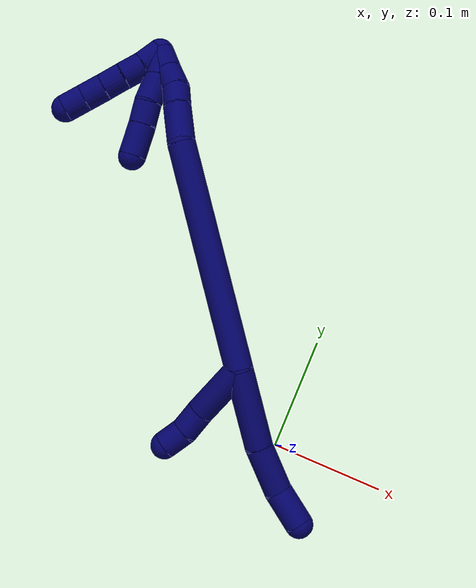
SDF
<sdf version="1.7">
 <world name="default">
  <model name="7">
   <static>0</static>
   <link name="7">
    <collision name="collision-cylinder-e_1_2_8">
     <pose>0.033033 -0.010038 -0.008915 2.29699 1.18476 1.96422</pose>
     <geometry><cylinder><radius>0.0125</radius><length>0.071314</length></cylinder></geometry>
     <surface>
      <friction><ode><mu>1.16</mu><mu2>1.16</mu2><slip1>0</slip1><slip2>0</slip2></ode></friction>
      <contact><ode><kp>1e+06</kp><kd>1</kd><max_vel>0</max_vel><min_depth>0.001</min_depth></ode></contact>
     </surface>
    </collision>
    <visual name="visual-cylinder-e_1_2_8">
     <pose>0.033033 -0.010038 -0.008915 2.29699 1.18476 1.96422</pose>
     <geometry><cylinder><radius>0.0125</radius><length>0.071314</length></cylinder></geometry>
     <material><ambient>0.003922 0 0.403922 1</ambient></material>
    </visual>
    <collision name="collision-cylinder-e_2_8_9">
     <pose>0.086578 -0.028043 -0.020468 1.89062 1.18248 1.49782</pose>
     <geometry><cylinder><radius>0.0125</radius><length>0.044325</length></cylinder></geometry>
     <surface>
      <friction><ode><mu>1.16</mu><mu2>1.16</mu2><slip1>0</slip1><slip2>0</slip2></ode></friction>
      <contact><ode><kp>1e+06</kp><kd>1</kd><max_vel>0</max_vel><min_depth>0.001</min_depth></ode></contact>
     </surface>
    </collision>
    <visual name="visual-cylinder-e_2_8_9">
     <pose>0.086578 -0.028043 -0.020468 1.89062 1.18248 1.49782</pose>
     <geometry><cylinder><radius>0.0125</radius><length>0.044325</length></cylinder></geometry>
     <material><ambient>0.003922 0 0.403922 1</ambient></material>
    </visual>
    <collision name="collision-cylinder-e_3_9_6">
     <pose>0.120638 -0.046568 -0.023469 1.60515 0.908435 0.935818</pose>
     <geometry><cylinder><radius>0.0125</radius><length>0.034361</length></cylinder></geometry>
     <surface>
      <friction><ode><mu>1.16</mu><mu2>1.16</mu2><slip1>0</slip1><slip2>0</slip2></ode></friction>
      <contact><ode><kp>1e+06</kp><kd>1</kd><max_vel>0</max_vel><min_depth>0.001</min_depth></ode></contact>
     </surface>
    </collision>
    <visual name="visual-cylinder-e_3_9_6">
     <pose>0.120638 -0.046568 -0.023469 1.60515 0.908435 0.935818</pose>
     <geometry><cylinder><radius>0.0125</radius><length>0.034361</length></cylinder></geometry>
     <material><ambient>0.003922 0 0.403922 1</ambient></material>
    </visual>
    <collision name="collision-cylinder-e_1_2_10">
     <pose>0.014129 0.009447 -0.02131 -2.72431 0.544906 -1.84468</pose>
     <geometry><cylinder><radius>0.0125</radius><length>0.054515</length></cylinder></geometry>
     <surface>
      <friction><ode><mu>1.16</mu><mu2>1.16</mu2><slip1>0</slip1><slip2>0</slip2></ode></friction>
      <contact><ode><kp>1e+06</kp><kd>1</kd><max_vel>0</max_vel><min_depth>0.001</min_depth></ode></contact>
     </surface>
    </collision>
    <visual name="visual-cylinder-e_1_2_10">
     <pose>0.014129 0.009447 -0.02131 -2.72431 0.544906 -1.84468</pose>
     <geometry><cylinder><radius>0.0125</radius><length>0.054515</length></cylinder></geometry>
     <material><ambient>0.003922 0 0.403922 1</ambient></material>
    </visual>
    <collision name="collision-cylinder-e_2_10_11">
     <pose>0.033701 0.020533 -0.053007 -2.98514 0.477694 -2.5187</pose>
     <geometry><cylinder><radius>0.0125</radius><length>0.023681</length></cylinder></geometry>
     <surface>
      <friction><ode><mu>1.16</mu><mu2>1.16</mu2><slip1>0</slip1><slip2>0</slip2></ode></friction>
      <contact><ode><kp>1e+06</kp><kd>1</kd><max_vel>0</max_vel><min_depth>0.001</min_depth></ode></contact>
     </surface>
    </collision>
    <visual name="visual-cylinder-e_2_10_11">
     <pose>0.033701 0.020533 -0.053007 -2.98514 0.477694 -2.5187</pose>
     <geometry><cylinder><radius>0.0125</radius><length>0.023681</length></cylinder></geometry>
     <material><ambient>0.003922 0 0.403922 1</ambient></material>
    </visual>
    <collision name="collision-cylinder-e_3_11_5">
     <pose>0.041462 0.024517 -0.073784 -2.91958 0.214202 -1.53472</pose>
     <geometry><cylinder><radius>0.0125</radius><length>0.021803</length></cylinder></geometry>
     <surface>
      <friction><ode><mu>1.16</mu><mu2>1.16</mu2><slip1>0</slip1><slip2>0</slip2></ode></friction>
      <contact><ode><kp>1e+06</kp><kd>1</kd><max_vel>0</max_vel><min_depth>0.001</min_depth></ode></contact>
     </surface>
    </collision>
    <visual name="visual-cylinder-e_3_11_5">
     <pose>0.041462 0.024517 -0.073784 -2.91958 0.214202 -1.53472</pose>
     <geometry><cylinder><radius>0.0125</radius><length>0.021803</length></cylinder></geometry>
     <material><ambient>0.003922 0 0.403922 1</ambient></material>
    </visual>
    <collision name="collision-cylinder-e_1_2_12">
     <pose>-0.084453 0.047552 0.031215 -0.989914 -0.978052 0.559407</pose>
     <geometry><cylinder><radius>0.0125</radius><length>0.203646</length></cylinder></geometry>
     <surface>
      <friction><ode><mu>1.16</mu><mu2>1.16</mu2><slip1>0</slip1><slip2>0</slip2></ode></friction>
      <contact><ode><kp>1e+06</kp><kd>1</kd><max_vel>0</max_vel><min_depth>0.001</min_depth></ode></contact>
     </surface>
    </collision>
    <visual name="visual-cylinder-e_1_2_12">
     <pose>-0.084453 0.047552 0.031215 -0.989914 -0.978052 0.559407</pose>
     <geometry><cylinder><radius>0.0125</radius><length>0.203646</length></cylinder></geometry>
     <material><ambient>0.003922 0 0.403922 1</ambient></material>
    </visual>
    <collision name="collision-cylinder-e_2_12_13">
     <pose>-0.179461 0.106625 0.070678 -0.949453 -0.640264 0.337529</pose>
     <geometry><cylinder><radius>0.0125</radius><length>0.035337</length></cylinder></geometry>
     <surface>
      <friction><ode><mu>1.16</mu><mu2>1.16</mu2><slip1>0</slip1><slip2>0</slip2></ode></friction>
      <contact><ode><kp>1e+06</kp><kd>1</kd><max_vel>0</max_vel><min_depth>0.001</min_depth></ode></contact>
     </surface>
    </collision>
    <visual name="visual-cylinder-e_2_12_13">
     <pose>-0.179461 0.106625 0.070678 -0.949453 -0.640264 0.337529</pose>
     <geometry><cylinder><radius>0.0125</radius><length>0.035337</length></cylinder></geometry>
     <material><ambient>0.003922 0 0.403922 1</ambient></material>
    </visual>
    <collision name="collision-cylinder-e_3_13_14">
     <pose>-0.195112 0.125161 0.083944 -0.949807 -0.533588 0.279216</pose>
     <geometry><cylinder><radius>0.0125</radius><length>0.020036</length></cylinder></geometry>
     <surface>
      <friction><ode><mu>1.16</mu><mu2>1.16</mu2><slip1>0</slip1><slip2>0</slip2></ode></friction>
      <contact><ode><kp>1e+06</kp><kd>1</kd><max_vel>0</max_vel><min_depth>0.001</min_depth></ode></contact>
     </surface>
    </collision>
    <visual name="visual-cylinder-e_3_13_14">
     <pose>-0.195112 0.125161 0.083944 -0.949807 -0.533588 0.279216</pose>
     <geometry><cylinder><radius>0.0125</radius><length>0.020036</length></cylinder></geometry>
     <material><ambient>0.003922 0 0.403922 1</ambient></material>
    </visual>
    <collision name="collision-cylinder-e_4_14_15">
     <pose>-0.206351 0.140277 0.091256 -1.29489 -0.630388 0.483483</pose>
     <geometry><cylinder><radius>0.0125</radius><length>0.020845</length></cylinder></geometry>
     <surface>
      <friction><ode><mu>1.16</mu><mu2>1.16</mu2><slip1>0</slip1><slip2>0</slip2></ode></friction>
      <contact><ode><kp>1e+06</kp><kd>1</kd><max_vel>0</max_vel><min_depth>0.001</min_depth></ode></contact>
     </surface>
    </collision>
    <visual name="visual-cylinder-e_4_14_15">
     <pose>-0.206351 0.140277 0.091256 -1.29489 -0.630388 0.483483</pose>
     <geometry><cylinder><radius>0.0125</radius><length>0.020845</length></cylinder></geometry>
     <material><ambient>0.003922 0 0.403922 1</ambient></material>
    </visual>
    <collision name="collision-cylinder-e_5_15_1">
     <pose>-0.219268 0.155428 0.095956 -1.24197 -0.737951 0.539767</pose>
     <geometry><cylinder><radius>0.0125</radius><length>0.020137</length></cylinder></geometry>
     <surface>
      <friction><ode><mu>1.16</mu><mu2>1.16</mu2><slip1>0</slip1><slip2>0</slip2></ode></friction>
      <contact><ode><kp>1e+06</kp><kd>1</kd><max_vel>0</max_vel><min_depth>0.001</min_depth></ode></contact>
     </surface>
    </collision>
    <visual name="visual-cylinder-e_5_15_1">
     <pose>-0.219268 0.155428 0.095956 -1.24197 -0.737951 0.539767</pose>
     <geometry><cylinder><radius>0.0125</radius><length>0.020137</length></cylinder></geometry>
     <material><ambient>0.003922 0 0.403922 1</ambient></material>
    </visual>
    <collision name="collision-cylinder-e_1_1_16">
     <pose>-0.224568 0.163172 0.088495 -3.07132 0.147958 -2.25592</pose>
     <geometry><cylinder><radius>0.0125</radius><length>0.02</length></cylinder></geometry>
     <surface>
      <friction><ode><mu>1.16</mu><mu2>1.16</mu2><slip1>0</slip1><slip2>0</slip2></ode></friction>
      <contact><ode><kp>1e+06</kp><kd>1</kd><max_vel>0</max_vel><min_depth>0.001</min_depth></ode></contact>
     </surface>
    </collision>
    <visual name="visual-cylinder-e_1_1_16">
     <pose>-0.224568 0.163172 0.088495 -3.07132 0.147958 -2.25592</pose>
     <geometry><cylinder><radius>0.0125</radius><length>0.02</length></cylinder></geometry>
     <material><ambient>0.003922 0 0.403922 1</ambient></material>
    </visual>
    <collision name="collision-cylinder-e_2_16_17">
     <pose>-0.222515 0.165797 0.068834 -2.94698 0.057891 -0.576682</pose>
     <geometry><cylinder><radius>0.0125</radius><length>0.02</length></cylinder></geometry>
     <surface>
      <friction><ode><mu>1.16</mu><mu2>1.16</mu2><slip1>0</slip1><slip2>0</slip2></ode></friction>
      <contact><ode><kp>1e+06</kp><kd>1</kd><max_vel>0</max_vel><min_depth>0.001</min_depth></ode></contact>
     </surface>
    </collision>
    <visual name="visual-cylinder-e_2_16_17">
     <pose>-0.222515 0.165797 0.068834 -2.94698 0.057891 -0.576682</pose>
     <geometry><cylinder><radius>0.0125</radius><length>0.02</length></cylinder></geometry>
     <material><ambient>0.003922 0 0.403922 1</ambient></material>
    </visual>
    <collision name="collision-cylinder-e_3_17_18">
     <pose>-0.221045 0.170031 0.049349 -2.90827 0.08928 -0.72832</pose>
     <geometry><cylinder><radius>0.0125</radius><length>0.02</length></cylinder></geometry>
     <surface>
      <friction><ode><mu>1.16</mu><mu2>1.16</mu2><slip1>0</slip1><slip2>0</slip2></ode></friction>
      <contact><ode><kp>1e+06</kp><kd>1</kd><max_vel>0</max_vel><min_depth>0.001</min_depth></ode></contact>
     </surface>
    </collision>
    <visual name="visual-cylinder-e_3_17_18">
     <pose>-0.221045 0.170031 0.049349 -2.90827 0.08928 -0.72832</pose>
     <geometry><cylinder><radius>0.0125</radius><length>0.02</length></cylinder></geometry>
     <material><ambient>0.003922 0 0.403922 1</ambient></material>
    </visual>
    <collision name="collision-cylinder-e_4_18_19">
     <pose>-0.219377 0.174833 0.030007 -2.8882 0.077669 -0.592131</pose>
     <geometry><cylinder><radius>0.0125</radius><length>0.02</length></cylinder></geometry>
     <surface>
      <friction><ode><mu>1.16</mu><mu2>1.16</mu2><slip1>0</slip1><slip2>0</slip2></ode></friction>
      <contact><ode><kp>1e+06</kp><kd>1</kd><max_vel>0</max_vel><min_depth>0.001</min_depth></ode></contact>
     </surface>
    </collision>
    <visual name="visual-cylinder-e_4_18_19">
     <pose>-0.219377 0.174833 0.030007 -2.8882 0.077669 -0.592131</pose>
     <geometry><cylinder><radius>0.0125</radius><length>0.02</length></cylinder></geometry>
     <material><ambient>0.003922 0 0.403922 1</ambient></material>
    </visual>
    <collision name="collision-cylinder-e_5_19_4">
     <pose>-0.217816 0.179851 0.01071 -2.88614 0.07857 -0.594011</pose>
     <geometry><cylinder><radius>0.0125</radius><length>0.02</length></cylinder></geometry>
     <surface>
      <friction><ode><mu>1.16</mu><mu2>1.16</mu2><slip1>0</slip1><slip2>0</slip2></ode></friction>
      <contact><ode><kp>1e+06</kp><kd>1</kd><max_vel>0</max_vel><min_depth>0.001</min_depth></ode></contact>
     </surface>
    </collision>
    <visual name="visual-cylinder-e_5_19_4">
     <pose>-0.217816 0.179851 0.01071 -2.88614 0.07857 -0.594011</pose>
     <geometry><cylinder><radius>0.0125</radius><length>0.02</length></cylinder></geometry>
     <material><ambient>0.003922 0 0.403922 1</ambient></material>
    </visual>
    <collision name="collision-cylinder-e_1_1_20">
     <pose>-0.218303 0.156702 0.091056 2.47261 0.693376 1.60953</pose>
     <geometry><cylinder><radius>0.0125</radius><length>0.024216</length></cylinder></geometry>
     <surface>
      <friction><ode><mu>1.16</mu><mu2>1.16</mu2><slip1>0</slip1><slip2>0</slip2></ode></friction>
      <contact><ode><kp>1e+06</kp><kd>1</kd><max_vel>0</max_vel><min_depth>0.001</min_depth></ode></contact>
     </surface>
    </collision>
    <visual name="visual-cylinder-e_1_1_20">
     <pose>-0.218303 0.156702 0.091056 2.47261 0.693376 1.60953</pose>
     <geometry><cylinder><radius>0.0125</radius><length>0.024216</length></cylinder></geometry>
     <material><ambient>0.003922 0 0.403922 1</ambient></material>
    </visual>
    <collision name="collision-cylinder-e_2_20_21">
     <pose>-0.204184 0.14706 0.073392 2.7843 0.523352 1.95513</pose>
     <geometry><cylinder><radius>0.0125</radius><length>0.025531</length></cylinder></geometry>
     <surface>
      <friction><ode><mu>1.16</mu><mu2>1.16</mu2><slip1>0</slip1><slip2>0</slip2></ode></friction>
      <contact><ode><kp>1e+06</kp><kd>1</kd><max_vel>0</max_vel><min_depth>0.001</min_depth></ode></contact>
     </surface>
    </collision>
    <visual name="visual-cylinder-e_2_20_21">
     <pose>-0.204184 0.14706 0.073392 2.7843 0.523352 1.95513</pose>
     <geometry><cylinder><radius>0.0125</radius><length>0.025531</length></cylinder></geometry>
     <material><ambient>0.003922 0 0.403922 1</ambient></material>
    </visual>
    <collision name="collision-cylinder-e_3_21_22">
     <pose>-0.19088 0.140703 0.055655 2.81611 0.726768 2.32639</pose>
     <geometry><cylinder><radius>0.0125</radius><length>0.020842</length></cylinder></geometry>
     <surface>
      <friction><ode><mu>1.16</mu><mu2>1.16</mu2><slip1>0</slip1><slip2>0</slip2></ode></friction>
      <contact><ode><kp>1e+06</kp><kd>1</kd><max_vel>0</max_vel><min_depth>0.001</min_depth></ode></contact>
     </surface>
    </collision>
    <visual name="visual-cylinder-e_3_21_22">
     <pose>-0.19088 0.140703 0.055655 2.81611 0.726768 2.32639</pose>
     <geometry><cylinder><radius>0.0125</radius><length>0.020842</length></cylinder></geometry>
     <material><ambient>0.003922 0 0.403922 1</ambient></material>
    </visual>
    <collision name="collision-cylinder-e_4_22_3">
     <pose>-0.174899 0.13483 0.037194 2.84538 0.663436 2.32407</pose>
     <geometry><cylinder><radius>0.0125</radius><length>0.02941</length></cylinder></geometry>
     <surface>
      <friction><ode><mu>1.16</mu><mu2>1.16</mu2><slip1>0</slip1><slip2>0</slip2></ode></friction>
      <contact><ode><kp>1e+06</kp><kd>1</kd><max_vel>0</max_vel><min_depth>0.001</min_depth></ode></contact>
     </surface>
    </collision>
    <visual name="visual-cylinder-e_4_22_3">
     <pose>-0.174899 0.13483 0.037194 2.84538 0.663436 2.32407</pose>
     <geometry><cylinder><radius>0.0125</radius><length>0.02941</length></cylinder></geometry>
     <material><ambient>0.003922 0 0.403922 1</ambient></material>
    </visual>
    <collision name="collision-sphere-3">
     <pose>-0.165844 0.131448 0.026113 0 -0 0</pose>
     <geometry><sphere><radius>0.0125</radius></sphere></geometry>
     <surface>
      <friction><ode><mu>1.16</mu><mu2>1.16</mu2><slip1>0</slip1><slip2>0</slip2></ode></friction>
      <contact><ode><kp>1e+06</kp><kd>1</kd><max_vel>0</max_vel><min_depth>0.001</min_depth></ode></contact>
     </surface>
    </collision>
    <visual name="visual-sphere-3">
     <pose>-0.165844 0.131448 0.026113 0 -0 0</pose>
     <geometry><sphere><radius>0.0125</radius></sphere></geometry>
     <material><ambient>0.003922 0 0.403922 1</ambient></material>
    </visual>
    <collision name="collision-sphere-22">
     <pose>-0.183955 0.138212 0.048276 0 -0 0</pose>
     <geometry><sphere><radius>0.0125</radius></sphere></geometry>
     <surface>
      <friction><ode><mu>1.16</mu><mu2>1.16</mu2><slip1>0</slip1><slip2>0</slip2></ode></friction>
      <contact><ode><kp>1e+06</kp><kd>1</kd><max_vel>0</max_vel><min_depth>0.001</min_depth></ode></contact>
     </surface>
    </collision>
    <visual name="visual-sphere-22">
     <pose>-0.183955 0.138212 0.048276 0 -0 0</pose>
     <geometry><sphere><radius>0.0125</radius></sphere></geometry>
     <material><ambient>0.003922 0 0.403922 1</ambient></material>
    </visual>
    <collision name="collision-sphere-21">
     <pose>-0.197804 0.143193 0.063034 0 -0 0</pose>
     <geometry><sphere><radius>0.0125</radius></sphere></geometry>
     <surface>
      <friction><ode><mu>1.16</mu><mu2>1.16</mu2><slip1>0</slip1><slip2>0</slip2></ode></friction>
      <contact><ode><kp>1e+06</kp><kd>1</kd><max_vel>0</max_vel><min_depth>0.001</min_depth></ode></contact>
     </surface>
    </collision>
    <visual name="visual-sphere-21">
     <pose>-0.197804 0.143193 0.063034 0 -0 0</pose>
     <geometry><sphere><radius>0.0125</radius></sphere></geometry>
     <material><ambient>0.003922 0 0.403922 1</ambient></material>
    </visual>
    <collision name="collision-sphere-20">
     <pose>-0.210564 0.150927 0.083751 0 -0 0</pose>
     <geometry><sphere><radius>0.0125</radius></sphere></geometry>
     <surface>
      <friction><ode><mu>1.16</mu><mu2>1.16</mu2><slip1>0</slip1><slip2>0</slip2></ode></friction>
      <contact><ode><kp>1e+06</kp><kd>1</kd><max_vel>0</max_vel><min_depth>0.001</min_depth></ode></contact>
     </surface>
    </collision>
    <visual name="visual-sphere-20">
     <pose>-0.210564 0.150927 0.083751 0 -0 0</pose>
     <geometry><sphere><radius>0.0125</radius></sphere></geometry>
     <material><ambient>0.003922 0 0.403922 1</ambient></material>
    </visual>
    <collision name="collision-sphere-4">
     <pose>-0.217031 0.18237 0.001064 0 -0 0</pose>
     <geometry><sphere><radius>0.0125</radius></sphere></geometry>
     <surface>
      <friction><ode><mu>1.16</mu><mu2>1.16</mu2><slip1>0</slip1><slip2>0</slip2></ode></friction>
      <contact><ode><kp>1e+06</kp><kd>1</kd><max_vel>0</max_vel><min_depth>0.001</min_depth></ode></contact>
     </surface>
    </collision>
    <visual name="visual-sphere-4">
     <pose>-0.217031 0.18237 0.001064 0 -0 0</pose>
     <geometry><sphere><radius>0.0125</radius></sphere></geometry>
     <material><ambient>0.003922 0 0.403922 1</ambient></material>
    </visual>
    <collision name="collision-sphere-11">
     <pose>0.039144 0.022171 -0.063393 0 -0 0</pose>
     <geometry><sphere><radius>0.0125</radius></sphere></geometry>
     <surface>
      <friction><ode><mu>1.16</mu><mu2>1.16</mu2><slip1>0</slip1><slip2>0</slip2></ode></friction>
      <contact><ode><kp>1e+06</kp><kd>1</kd><max_vel>0</max_vel><min_depth>0.001</min_depth></ode></contact>
     </surface>
    </collision>
    <visual name="visual-sphere-11">
     <pose>0.039144 0.022171 -0.063393 0 -0 0</pose>
     <geometry><sphere><radius>0.0125</radius></sphere></geometry>
     <material><ambient>0.003922 0 0.403922 1</ambient></material>
    </visual>
    <collision name="collision-sphere-10">
     <pose>0.028257 0.018894 -0.04262 0 -0 0</pose>
     <geometry><sphere><radius>0.0125</radius></sphere></geometry>
     <surface>
      <friction><ode><mu>1.16</mu><mu2>1.16</mu2><slip1>0</slip1><slip2>0</slip2></ode></friction>
      <contact><ode><kp>1e+06</kp><kd>1</kd><max_vel>0</max_vel><min_depth>0.001</min_depth></ode></contact>
     </surface>
    </collision>
    <visual name="visual-sphere-10">
     <pose>0.028257 0.018894 -0.04262 0 -0 0</pose>
     <geometry><sphere><radius>0.0125</radius></sphere></geometry>
     <material><ambient>0.003922 0 0.403922 1</ambient></material>
    </visual>
    <collision name="collision-sphere-6">
     <pose>0.134186 -0.057128 -0.023832 0 -0 0</pose>
     <geometry><sphere><radius>0.0125</radius></sphere></geometry>
     <surface>
      <friction><ode><mu>1.16</mu><mu2>1.16</mu2><slip1>0</slip1><slip2>0</slip2></ode></friction>
      <contact><ode><kp>1e+06</kp><kd>1</kd><max_vel>0</max_vel><min_depth>0.001</min_depth></ode></contact>
     </surface>
    </collision>
    <visual name="visual-sphere-6">
     <pose>0.134186 -0.057128 -0.023832 0 -0 0</pose>
     <geometry><sphere><radius>0.0125</radius></sphere></geometry>
     <material><ambient>0.003922 0 0.403922 1</ambient></material>
    </visual>
    <collision name="collision-sphere-9">
     <pose>0.107091 -0.036009 -0.023106 0 -0 0</pose>
     <geometry><sphere><radius>0.0125</radius></sphere></geometry>
     <surface>
      <friction><ode><mu>1.16</mu><mu2>1.16</mu2><slip1>0</slip1><slip2>0</slip2></ode></friction>
      <contact><ode><kp>1e+06</kp><kd>1</kd><max_vel>0</max_vel><min_depth>0.001</min_depth></ode></contact>
     </surface>
    </collision>
    <visual name="visual-sphere-9">
     <pose>0.107091 -0.036009 -0.023106 0 -0 0</pose>
     <geometry><sphere><radius>0.0125</radius></sphere></geometry>
     <material><ambient>0.003922 0 0.403922 1</ambient></material>
    </visual>
    <collision name="collision-sphere-2">
     <geometry><sphere><radius>0.0125</radius></sphere></geometry>
     <surface>
      <friction><ode><mu>1.16</mu><mu2>1.16</mu2><slip1>0</slip1><slip2>0</slip2></ode></friction>
      <contact><ode><kp>1e+06</kp><kd>1</kd><max_vel>0</max_vel><min_depth>0.001</min_depth></ode></contact>
     </surface>
    </collision>
    <visual name="visual-sphere-2">
     <geometry><sphere><radius>0.0125</radius></sphere></geometry>
     <material><ambient>0.003922 0 0.403922 1</ambient></material>
    </visual>
    <collision name="collision-sphere-19">
     <pose>-0.218601 0.177332 0.020355 0 -0 0</pose>
     <geometry><sphere><radius>0.0125</radius></sphere></geometry>
     <surface>
      <friction><ode><mu>1.16</mu><mu2>1.16</mu2><slip1>0</slip1><slip2>0</slip2></ode></friction>
      <contact><ode><kp>1e+06</kp><kd>1</kd><max_vel>0</max_vel><min_depth>0.001</min_depth></ode></contact>
     </surface>
    </collision>
    <visual name="visual-sphere-19">
     <pose>-0.218601 0.177332 0.020355 0 -0 0</pose>
     <geometry><sphere><radius>0.0125</radius></sphere></geometry>
     <material><ambient>0.003922 0 0.403922 1</ambient></material>
    </visual>
    <collision name="collision-sphere-8">
     <pose>0.066065 -0.020077 -0.01783 0 -0 0</pose>
     <geometry><sphere><radius>0.0125</radius></sphere></geometry>
     <surface>
      <friction><ode><mu>1.16</mu><mu2>1.16</mu2><slip1>0</slip1><slip2>0</slip2></ode></friction>
      <contact><ode><kp>1e+06</kp><kd>1</kd><max_vel>0</max_vel><min_depth>0.001</min_depth></ode></contact>
     </surface>
    </collision>
    <visual name="visual-sphere-8">
     <pose>0.066065 -0.020077 -0.01783 0 -0 0</pose>
     <geometry><sphere><radius>0.0125</radius></sphere></geometry>
     <material><ambient>0.003922 0 0.403922 1</ambient></material>
    </visual>
    <collision name="collision-sphere-5">
     <pose>0.043779 0.026862 -0.084176 0 -0 0</pose>
     <geometry><sphere><radius>0.0125</radius></sphere></geometry>
     <surface>
      <friction><ode><mu>1.16</mu><mu2>1.16</mu2><slip1>0</slip1><slip2>0</slip2></ode></friction>
      <contact><ode><kp>1e+06</kp><kd>1</kd><max_vel>0</max_vel><min_depth>0.001</min_depth></ode></contact>
     </surface>
    </collision>
    <visual name="visual-sphere-5">
     <pose>0.043779 0.026862 -0.084176 0 -0 0</pose>
     <geometry><sphere><radius>0.0125</radius></sphere></geometry>
     <material><ambient>0.003922 0 0.403922 1</ambient></material>
    </visual>
    <collision name="collision-sphere-12">
     <pose>-0.168906 0.095105 0.06243 0 -0 0</pose>
     <geometry><sphere><radius>0.0125</radius></sphere></geometry>
     <surface>
      <friction><ode><mu>1.16</mu><mu2>1.16</mu2><slip1>0</slip1><slip2>0</slip2></ode></friction>
      <contact><ode><kp>1e+06</kp><kd>1</kd><max_vel>0</max_vel><min_depth>0.001</min_depth></ode></contact>
     </surface>
    </collision>
    <visual name="visual-sphere-12">
     <pose>-0.168906 0.095105 0.06243 0 -0 0</pose>
     <geometry><sphere><radius>0.0125</radius></sphere></geometry>
     <material><ambient>0.003922 0 0.403922 1</ambient></material>
    </visual>
    <collision name="collision-sphere-13">
     <pose>-0.190016 0.118146 0.078926 0 -0 0</pose>
     <geometry><sphere><radius>0.0125</radius></sphere></geometry>
     <surface>
      <friction><ode><mu>1.16</mu><mu2>1.16</mu2><slip1>0</slip1><slip2>0</slip2></ode></friction>
      <contact><ode><kp>1e+06</kp><kd>1</kd><max_vel>0</max_vel><min_depth>0.001</min_depth></ode></contact>
     </surface>
    </collision>
    <visual name="visual-sphere-13">
     <pose>-0.190016 0.118146 0.078926 0 -0 0</pose>
     <geometry><sphere><radius>0.0125</radius></sphere></geometry>
     <material><ambient>0.003922 0 0.403922 1</ambient></material>
    </visual>
    <collision name="collision-sphere-14">
     <pose>-0.200207 0.132176 0.088963 0 -0 0</pose>
     <geometry><sphere><radius>0.0125</radius></sphere></geometry>
     <surface>
      <friction><ode><mu>1.16</mu><mu2>1.16</mu2><slip1>0</slip1><slip2>0</slip2></ode></friction>
      <contact><ode><kp>1e+06</kp><kd>1</kd><max_vel>0</max_vel><min_depth>0.001</min_depth></ode></contact>
     </surface>
    </collision>
    <visual name="visual-sphere-14">
     <pose>-0.200207 0.132176 0.088963 0 -0 0</pose>
     <geometry><sphere><radius>0.0125</radius></sphere></geometry>
     <material><ambient>0.003922 0 0.403922 1</ambient></material>
    </visual>
    <collision name="collision-sphere-15">
     <pose>-0.212494 0.148378 0.09355 0 -0 0</pose>
     <geometry><sphere><radius>0.0125</radius></sphere></geometry>
     <surface>
      <friction><ode><mu>1.16</mu><mu2>1.16</mu2><slip1>0</slip1><slip2>0</slip2></ode></friction>
      <contact><ode><kp>1e+06</kp><kd>1</kd><max_vel>0</max_vel><min_depth>0.001</min_depth></ode></contact>
     </surface>
    </collision>
    <visual name="visual-sphere-15">
     <pose>-0.212494 0.148378 0.09355 0 -0 0</pose>
     <geometry><sphere><radius>0.0125</radius></sphere></geometry>
     <material><ambient>0.003922 0 0.403922 1</ambient></material>
    </visual>
    <collision name="collision-sphere-1">
     <pose>-0.226042 0.162478 0.098361 0 -0 0</pose>
     <geometry><sphere><radius>0.0125</radius></sphere></geometry>
     <surface>
      <friction><ode><mu>1.16</mu><mu2>1.16</mu2><slip1>0</slip1><slip2>0</slip2></ode></friction>
      <contact><ode><kp>1e+06</kp><kd>1</kd><max_vel>0</max_vel><min_depth>0.001</min_depth></ode></contact>
     </surface>
    </collision>
    <visual name="visual-sphere-1">
     <pose>-0.226042 0.162478 0.098361 0 -0 0</pose>
     <geometry><sphere><radius>0.0125</radius></sphere></geometry>
     <material><ambient>0.003922 0 0.403922 1</ambient></material>
    </visual>
    <collision name="collision-sphere-18">
     <pose>-0.220153 0.172334 0.039658 0 -0 0</pose>
     <geometry><sphere><radius>0.0125</radius></sphere></geometry>
     <surface>
      <friction><ode><mu>1.16</mu><mu2>1.16</mu2><slip1>0</slip1><slip2>0</slip2></ode></friction>
      <contact><ode><kp>1e+06</kp><kd>1</kd><max_vel>0</max_vel><min_depth>0.001</min_depth></ode></contact>
     </surface>
    </collision>
    <visual name="visual-sphere-18">
     <pose>-0.220153 0.172334 0.039658 0 -0 0</pose>
     <geometry><sphere><radius>0.0125</radius></sphere></geometry>
     <material><ambient>0.003922 0 0.403922 1</ambient></material>
    </visual>
    <collision name="collision-sphere-16">
     <pose>-0.223093 0.163867 0.078629 0 -0 0</pose>
     <geometry><sphere><radius>0.0125</radius></sphere></geometry>
     <surface>
      <friction><ode><mu>1.16</mu><mu2>1.16</mu2><slip1>0</slip1><slip2>0</slip2></ode></friction>
      <contact><ode><kp>1e+06</kp><kd>1</kd><max_vel>0</max_vel><min_depth>0.001</min_depth></ode></contact>
     </surface>
    </collision>
    <visual name="visual-sphere-16">
     <pose>-0.223093 0.163867 0.078629 0 -0 0</pose>
     <geometry><sphere><radius>0.0125</radius></sphere></geometry>
     <material><ambient>0.003922 0 0.403922 1</ambient></material>
    </visual>
    <collision name="collision-sphere-17">
     <pose>-0.221936 0.167728 0.059039 0 -0 0</pose>
     <geometry><sphere><radius>0.0125</radius></sphere></geometry>
     <surface>
      <friction><ode><mu>1.16</mu><mu2>1.16</mu2><slip1>0</slip1><slip2>0</slip2></ode></friction>
      <contact><ode><kp>1e+06</kp><kd>1</kd><max_vel>0</max_vel><min_depth>0.001</min_depth></ode></contact>
     </surface>
    </collision>
    <visual name="visual-sphere-17">
     <pose>-0.221936 0.167728 0.059039 0 -0 0</pose>
     <geometry><sphere><radius>0.0125</radius></sphere></geometry>
     <material><ambient>0.003922 0 0.403922 1</ambient></material>
    </visual>
    <inertial>
     <pose>-0.086778 0.068681 0.025701 0 -0 0</pose>
     <mass>0.75</mass>
     <inertia>
      <ixx>0.000556</ixx>
      <ixy>0</ixy>
      <ixz>0</ixz>
      <iyy>0.000877</iyy>
      <iyz>0</iyz>
      <izz>0.000196</izz>
     </inertia>
    </inertial>
   </link>
   <pose>-0.055684 0.046424 0.047011 -1.76366 0.666732 -0.703809</pose>
  </model>
 </world>
</sdf>
